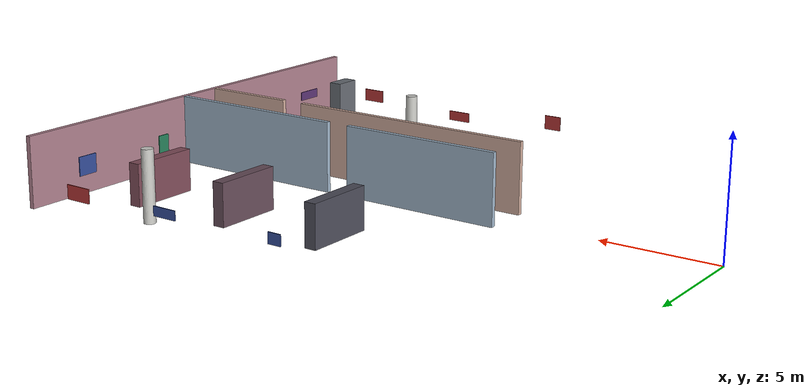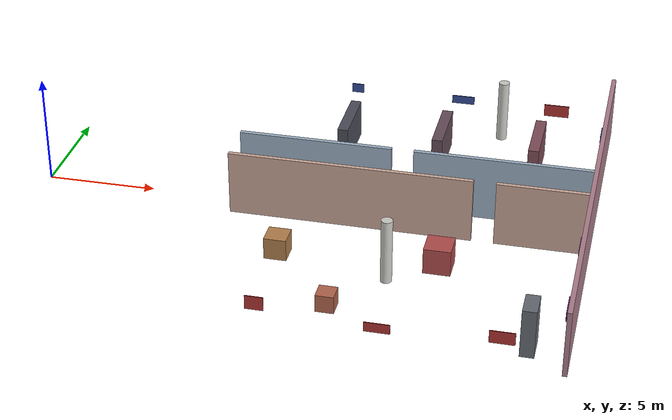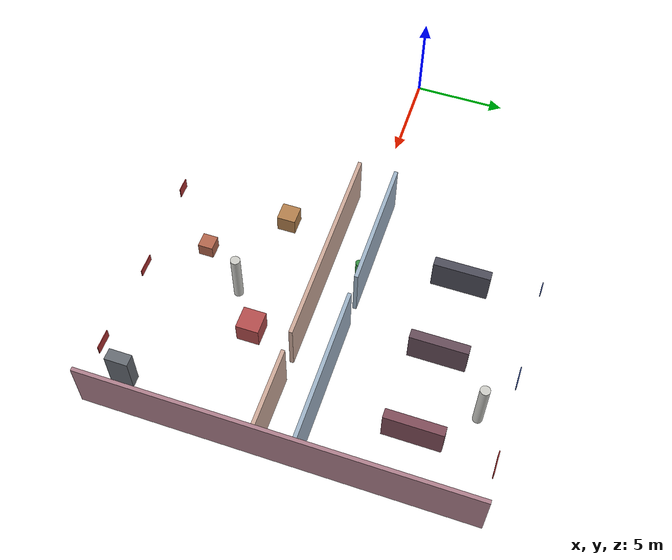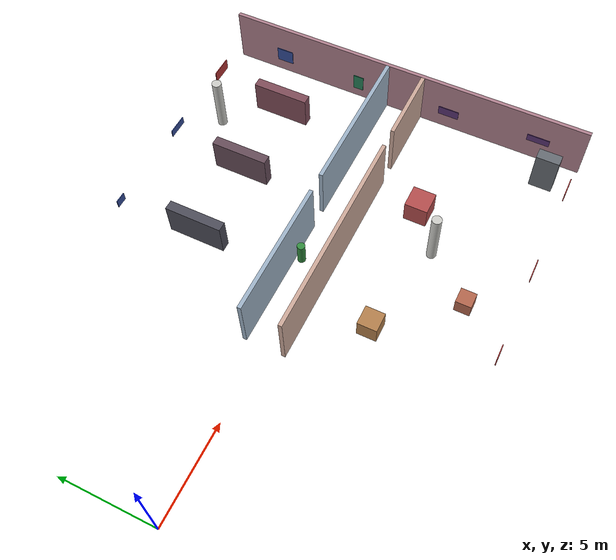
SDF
<sdf version="1.9">
 <world name="hyrak_indoor">
  <model name="wall_east_0">
   <static>true</static>
   <pose>25.100 0.000 1.500 0 0 0.0000</pose>
   <link name="link">
    <collision name="c"><geometry><box><size>0.200 20.000 3.000</size></box></geometry></collision>
    <visual name="v">
     <geometry><box><size>0.200 20.000 3.000</size></box></geometry>
     <material>
      <ambient>0.68 0.5 0.55 1</ambient>
      <diffuse>0.68 0.5 0.55 1</diffuse>
      <specular>0.05 0.05 0.05 1</specular>
     </material>
     <cast_shadows>false</cast_shadows>
    </visual>
   </link>
  </model>
  <model name="wall_corr_n_0">
   <static>true</static>
   <pose>12.500 1.000 1.500 0 0 0.0000</pose>
   <link name="link">
    <collision name="c"><geometry><box><size>7.000 0.200 3.000</size></box></geometry></collision>
    <visual name="v">
     <geometry><box><size>7.000 0.200 3.000</size></box></geometry>
     <material>
      <ambient>0.62 0.7 0.78 1</ambient>
      <diffuse>0.62 0.7 0.78 1</diffuse>
      <specular>0.05 0.05 0.05 1</specular>
     </material>
     <cast_shadows>false</cast_shadows>
    </visual>
   </link>
  </model>
  <model name="wall_corr_n_1">
   <static>true</static>
   <pose>21.000 1.000 1.500 0 0 0.0000</pose>
   <link name="link">
    <collision name="c"><geometry><box><size>8.000 0.200 3.000</size></box></geometry></collision>
    <visual name="v">
     <geometry><box><size>8.000 0.200 3.000</size></box></geometry>
     <material>
      <ambient>0.62 0.7 0.78 1</ambient>
      <diffuse>0.62 0.7 0.78 1</diffuse>
      <specular>0.05 0.05 0.05 1</specular>
     </material>
     <cast_shadows>false</cast_shadows>
    </visual>
   </link>
  </model>
  <model name="wall_corr_s_0">
   <static>true</static>
   <pose>14.500 -1.000 1.500 0 0 0.0000</pose>
   <link name="link">
    <collision name="c"><geometry><box><size>11.000 0.200 3.000</size></box></geometry></collision>
    <visual name="v">
     <geometry><box><size>11.000 0.200 3.000</size></box></geometry>
     <material>
      <ambient>0.8 0.66 0.6 1</ambient>
      <diffuse>0.8 0.66 0.6 1</diffuse>
      <specular>0.05 0.05 0.05 1</specular>
     </material>
     <cast_shadows>false</cast_shadows>
    </visual>
   </link>
  </model>
  <model name="wall_corr_s_1">
   <static>true</static>
   <pose>23.000 -1.000 1.500 0 0 0.0000</pose>
   <link name="link">
    <collision name="c"><geometry><box><size>4.000 0.200 3.000</size></box></geometry></collision>
    <visual name="v">
     <geometry><box><size>4.000 0.200 3.000</size></box></geometry>
     <material>
      <ambient>0.8 0.66 0.6 1</ambient>
      <diffuse>0.8 0.66 0.6 1</diffuse>
      <specular>0.05 0.05 0.05 1</specular>
     </material>
     <cast_shadows>false</cast_shadows>
    </visual>
   </link>
  </model>
  <model name="pan_s3">
   <static>true</static>
   <pose>12.576 -9.870 1.443 0 0 0.0000</pose>
   <link name="link">
    <collision name="c"><geometry><box><size>0.777 0.040 0.626</size></box></geometry></collision>
    <visual name="v">
     <geometry><box><size>0.777 0.040 0.626</size></box></geometry>
     <material>
      <ambient>0.7 0.2 0.2 1</ambient>
      <diffuse>0.7 0.2 0.2 1</diffuse>
      <specular>0.05 0.05 0.05 1</specular>
     </material>
     <cast_shadows>false</cast_shadows>
    </visual>
   </link>
  </model>
  <model name="pan_s4">
   <static>true</static>
   <pose>17.599 -9.870 1.021 0 0 0.0000</pose>
   <link name="link">
    <collision name="c"><geometry><box><size>1.082 0.040 0.432</size></box></geometry></collision>
    <visual name="v">
     <geometry><box><size>1.082 0.040 0.432</size></box></geometry>
     <material>
      <ambient>0.7 0.2 0.2 1</ambient>
      <diffuse>0.7 0.2 0.2 1</diffuse>
      <specular>0.05 0.05 0.05 1</specular>
     </material>
     <cast_shadows>false</cast_shadows>
    </visual>
   </link>
  </model>
  <model name="pan_s5">
   <static>true</static>
   <pose>22.580 -9.870 1.355 0 0 0.0000</pose>
   <link name="link">
    <collision name="c"><geometry><box><size>1.045 0.040 0.563</size></box></geometry></collision>
    <visual name="v">
     <geometry><box><size>1.045 0.040 0.563</size></box></geometry>
     <material>
      <ambient>0.7 0.2 0.2 1</ambient>
      <diffuse>0.7 0.2 0.2 1</diffuse>
      <specular>0.05 0.05 0.05 1</specular>
     </material>
     <cast_shadows>false</cast_shadows>
    </visual>
   </link>
  </model>
  <model name="pan_n3">
   <static>true</static>
   <pose>12.551 9.870 1.175 0 0 0.0000</pose>
   <link name="link">
    <collision name="c"><geometry><box><size>0.576 0.040 0.454</size></box></geometry></collision>
    <visual name="v">
     <geometry><box><size>0.576 0.040 0.454</size></box></geometry>
     <material>
      <ambient>0.2 0.3 0.6 1</ambient>
      <diffuse>0.2 0.3 0.6 1</diffuse>
      <specular>0.05 0.05 0.05 1</specular>
     </material>
     <cast_shadows>false</cast_shadows>
    </visual>
   </link>
  </model>
  <model name="pan_n4">
   <static>true</static>
   <pose>17.866 9.870 1.126 0 0 0.0000</pose>
   <link name="link">
    <collision name="c"><geometry><box><size>1.093 0.040 0.400</size></box></geometry></collision>
    <visual name="v">
     <geometry><box><size>1.093 0.040 0.400</size></box></geometry>
     <material>
      <ambient>0.2 0.3 0.6 1</ambient>
      <diffuse>0.2 0.3 0.6 1</diffuse>
      <specular>0.05 0.05 0.05 1</specular>
     </material>
     <cast_shadows>false</cast_shadows>
    </visual>
   </link>
  </model>
  <model name="pan_n5">
   <static>true</static>
   <pose>22.476 9.870 1.044 0 0 0.0000</pose>
   <link name="link">
    <collision name="c"><geometry><box><size>1.186 0.040 0.599</size></box></geometry></collision>
    <visual name="v">
     <geometry><box><size>1.186 0.040 0.599</size></box></geometry>
     <material>
      <ambient>0.7 0.2 0.2 1</ambient>
      <diffuse>0.7 0.2 0.2 1</diffuse>
      <specular>0.05 0.05 0.05 1</specular>
     </material>
     <cast_shadows>false</cast_shadows>
    </visual>
   </link>
  </model>
  <model name="pan_e0">
   <static>true</static>
   <pose>24.870 -7.584 1.519 0 0 0.0000</pose>
   <link name="link">
    <collision name="c"><geometry><box><size>0.040 1.193 0.400</size></box></geometry></collision>
    <visual name="v">
     <geometry><box><size>0.040 1.193 0.400</size></box></geometry>
     <material>
      <ambient>0.35 0.2 0.45 1</ambient>
      <diffuse>0.35 0.2 0.45 1</diffuse>
      <specular>0.05 0.05 0.05 1</specular>
     </material>
     <cast_shadows>false</cast_shadows>
    </visual>
   </link>
  </model>
  <model name="pan_e1">
   <static>true</static>
   <pose>24.870 -2.657 1.237 0 0 0.0000</pose>
   <link name="link">
    <collision name="c"><geometry><box><size>0.040 1.119 0.505</size></box></geometry></collision>
    <visual name="v">
     <geometry><box><size>0.040 1.119 0.505</size></box></geometry>
     <material>
      <ambient>0.35 0.2 0.45 1</ambient>
      <diffuse>0.35 0.2 0.45 1</diffuse>
      <specular>0.05 0.05 0.05 1</specular>
     </material>
     <cast_shadows>false</cast_shadows>
    </visual>
   </link>
  </model>
  <model name="pan_e2">
   <static>true</static>
   <pose>24.870 2.613 1.128 0 0 0.0000</pose>
   <link name="link">
    <collision name="c"><geometry><box><size>0.040 0.570 0.895</size></box></geometry></collision>
    <visual name="v">
     <geometry><box><size>0.040 0.570 0.895</size></box></geometry>
     <material>
      <ambient>0.15 0.5 0.35 1</ambient>
      <diffuse>0.15 0.5 0.35 1</diffuse>
      <specular>0.05 0.05 0.05 1</specular>
     </material>
     <cast_shadows>false</cast_shadows>
    </visual>
   </link>
  </model>
  <model name="pan_e3">
   <static>true</static>
   <pose>24.870 7.108 1.232 0 0 0.0000</pose>
   <link name="link">
    <collision name="c"><geometry><box><size>0.040 0.927 0.815</size></box></geometry></collision>
    <visual name="v">
     <geometry><box><size>0.040 0.927 0.815</size></box></geometry>
     <material>
      <ambient>0.2 0.3 0.6 1</ambient>
      <diffuse>0.2 0.3 0.6 1</diffuse>
      <specular>0.05 0.05 0.05 1</specular>
     </material>
     <cast_shadows>false</cast_shadows>
    </visual>
   </link>
  </model>
  <model name="b_shelf_0">
   <static>true</static>
   <pose>13.000 5.800 0.900 0 0 0.0000</pose>
   <link name="link">
    <collision name="c"><geometry><box><size>0.500 3.000 1.800</size></box></geometry></collision>
    <visual name="v">
     <geometry><box><size>0.500 3.000 1.800</size></box></geometry>
     <material>
      <ambient>0.3 0.3 0.35 1</ambient>
      <diffuse>0.3 0.3 0.35 1</diffuse>
      <specular>0.05 0.05 0.05 1</specular>
     </material>
     <cast_shadows>false</cast_shadows>
    </visual>
   </link>
  </model>
  <model name="b_shelf_1">
   <static>true</static>
   <pose>17.500 5.800 0.900 0 0 0.0000</pose>
   <link name="link">
    <collision name="c"><geometry><box><size>0.500 3.000 1.800</size></box></geometry></collision>
    <visual name="v">
     <geometry><box><size>0.500 3.000 1.800</size></box></geometry>
     <material>
      <ambient>0.4 0.3 0.35 1</ambient>
      <diffuse>0.4 0.3 0.35 1</diffuse>
      <specular>0.05 0.05 0.05 1</specular>
     </material>
     <cast_shadows>false</cast_shadows>
    </visual>
   </link>
  </model>
  <model name="b_shelf_2">
   <static>true</static>
   <pose>22.000 5.800 0.900 0 0 0.0000</pose>
   <link name="link">
    <collision name="c"><geometry><box><size>0.500 3.000 1.800</size></box></geometry></collision>
    <visual name="v">
     <geometry><box><size>0.500 3.000 1.800</size></box></geometry>
     <material>
      <ambient>0.5 0.3 0.35 1</ambient>
      <diffuse>0.5 0.3 0.35 1</diffuse>
      <specular>0.05 0.05 0.05 1</specular>
     </material>
     <cast_shadows>false</cast_shadows>
    </visual>
   </link>
  </model>
  <model name="b_pillar">
   <static>true</static>
   <pose>20.000 8.500 1.500 0 0 0</pose>
   <link name="link">
    <collision name="c">
     <geometry><cylinder><radius>0.25</radius><length>3.0</length></cylinder></geometry>
    </collision>
    <visual name="v">
     <geometry><cylinder><radius>0.25</radius><length>3.0</length></cylinder></geometry>
     <material>
      <ambient>0.8 0.8 0.78 1</ambient>
      <diffuse>0.8 0.8 0.78 1</diffuse>
      <specular>0.05 0.05 0.05 1</specular>
     </material>
     <cast_shadows>false</cast_shadows>
    </visual>
   </link>
  </model>
  <model name="c_box_0">
   <static>true</static>
   <pose>12.000 -4.000 0.500 0 0 0.0000</pose>
   <link name="link">
    <collision name="c"><geometry><box><size>1.000 1.000 1.000</size></box></geometry></collision>
    <visual name="v">
     <geometry><box><size>1.000 1.000 1.000</size></box></geometry>
     <material>
      <ambient>0.7 0.5 0.3 1</ambient>
      <diffuse>0.7 0.5 0.3 1</diffuse>
      <specular>0.05 0.05 0.05 1</specular>
     </material>
     <cast_shadows>false</cast_shadows>
    </visual>
   </link>
  </model>
  <model name="c_box_1">
   <static>true</static>
   <pose>15.000 -7.500 0.400 0 0 0.0000</pose>
   <link name="link">
    <collision name="c"><geometry><box><size>0.800 0.800 0.800</size></box></geometry></collision>
    <visual name="v">
     <geometry><box><size>0.800 0.800 0.800</size></box></geometry>
     <material>
      <ambient>0.7 0.4 0.3 1</ambient>
      <diffuse>0.7 0.4 0.3 1</diffuse>
      <specular>0.05 0.05 0.05 1</specular>
     </material>
     <cast_shadows>false</cast_shadows>
    </visual>
   </link>
  </model>
  <model name="c_box_2">
   <static>true</static>
   <pose>19.000 -3.500 0.600 0 0 0.0000</pose>
   <link name="link">
    <collision name="c"><geometry><box><size>1.200 1.200 1.200</size></box></geometry></collision>
    <visual name="v">
     <geometry><box><size>1.200 1.200 1.200</size></box></geometry>
     <material>
      <ambient>0.7 0.3 0.3 1</ambient>
      <diffuse>0.7 0.3 0.3 1</diffuse>
      <specular>0.05 0.05 0.05 1</specular>
     </material>
     <cast_shadows>false</cast_shadows>
    </visual>
   </link>
  </model>
  <model name="c_cabinet">
   <static>true</static>
   <pose>23.500 -8.500 1.100 0 0 0.0000</pose>
   <link name="link">
    <collision name="c"><geometry><box><size>0.600 1.200 2.200</size></box></geometry></collision>
    <visual name="v">
     <geometry><box><size>0.600 1.200 2.200</size></box></geometry>
     <material>
      <ambient>0.4 0.42 0.45 1</ambient>
      <diffuse>0.4 0.42 0.45 1</diffuse>
      <specular>0.05 0.05 0.05 1</specular>
     </material>
     <cast_shadows>false</cast_shadows>
    </visual>
   </link>
  </model>
  <model name="c_pillar">
   <static>true</static>
   <pose>17.000 -5.000 1.500 0 0 0</pose>
   <link name="link">
    <collision name="c">
     <geometry><cylinder><radius>0.25</radius><length>3.0</length></cylinder></geometry>
    </collision>
    <visual name="v">
     <geometry><cylinder><radius>0.25</radius><length>3.0</length></cylinder></geometry>
     <material>
      <ambient>0.8 0.8 0.78 1</ambient>
      <diffuse>0.8 0.8 0.78 1</diffuse>
      <specular>0.05 0.05 0.05 1</specular>
     </material>
     <cast_shadows>false</cast_shadows>
    </visual>
   </link>
  </model>
  <model name="corr_plant">
   <static>true</static>
   <pose>14.000 0.600 0.600 0 0 0</pose>
   <link name="link">
    <collision name="c">
     <geometry><cylinder><radius>0.2</radius><length>1.2</length></cylinder></geometry>
    </collision>
    <visual name="v">
     <geometry><cylinder><radius>0.2</radius><length>1.2</length></cylinder></geometry>
     <material>
      <ambient>0.2 0.55 0.25 1</ambient>
      <diffuse>0.2 0.55 0.25 1</diffuse>
      <specular>0.05 0.05 0.05 1</specular>
     </material>
     <cast_shadows>false</cast_shadows>
    </visual>
   </link>
  </model>
 </world>
</sdf>
